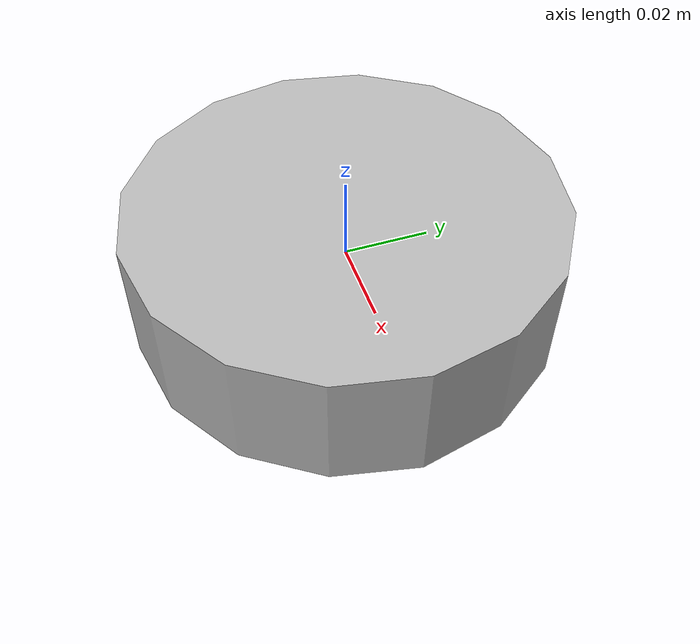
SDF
<?xml version="1.0" ?>
<sdf version="1.5">
  <model name="jar_lid_ghost">
    <link name="link">
      <gravity>false</gravity>
      <inertial>
        <pose>0 0 0 0 0 0</pose>
        <mass>0.05</mass>
        <inertia>
          <ixx>0.00029</ixx>
          <ixy>0</ixy>
          <ixz>0</ixz>
          <iyy>0.00029</iyy>
          <iyz>0</iyz>
          <izz>0.00007</izz>
        </inertia>
      </inertial>
      <visual name="visual">
        <pose>0 0 0 0 0 0</pose>
        <geometry>
          <mesh>
            <uri>model://jar_lid_simple/meshes/jar_lid_simple.dae</uri>
          </mesh>
        </geometry>
      </visual>
    </link>
  </model>
</sdf>
